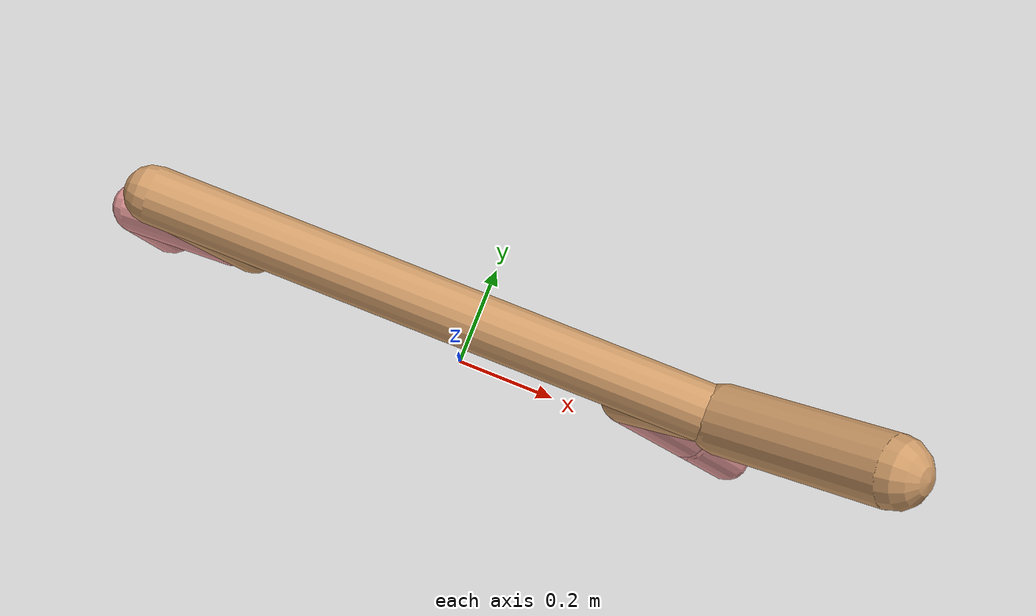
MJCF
<mujoco model="cheetah">
  <compiler angle="radian" coordinate="local" inertiafromgeom="true" settotalmass="14" />
  <default>
    <joint armature=".1" damping=".01" limited="true" solimplimit="0 .8 .03" solreflimit=".02 1" stiffness="8" />
    <geom conaffinity="0" condim="3" contype="1" friction="0.8 .1 .1" rgba="0.8 0.6 .4 1" solimp="0.0 0.8 0.01" solref="0.02 1" />
    <motor ctrllimited="true" ctrlrange="-1 1" />
  </default>
  <size nstack="300000" nuser_geom="1" />
  <option gravity="0 0 -9.81" timestep="0.01" />
  <worldbody>
    <body name="torso" pos="0.0 0.0 0.8222203358425826">
      <joint armature="0" axis="1 0 0" damping="0" limited="false" name="ignorex" pos="0 0 0" stiffness="0" type="slide" />
      <joint armature="0" axis="0 0 1" damping="0" limited="false" name="ignorez" pos="0 0 0" stiffness="0" type="slide" />
      <joint armature="0" axis="0 1 0" damping="0" limited="false" name="ignorey" pos="0 0 0" stiffness="0" type="hinge" />
      <geom fromto="-0.5 0.0 0.0 0.4630201679151904 0.0 0.0" name="torso" size="0.04709528323352818" type="capsule" />
      <geom axisangle="0 1 0 .87" name="head" pos="0.5630201679151904 0.0 0.1" size="0.05665266252592601 0.15" type="capsule" />

      <body name="bthigh" pos="-.5 0 0">
        <joint axis="0 1 0" damping="6" name="bthigh" pos="0 0 0" range="-.52 1.05" stiffness="240" type="hinge" />
        <geom axisangle="0 1 0 -3.8" name="bthigh" pos="0.07755751320315665 0.0 -0.10082476716410364" size="0.04348755493895534 0.10819158486629377" type="capsule" />
        <body name="bshin" pos="0.1151150264063133 0.0 -0.19164953432820728">
          <joint axis="0 1 0" damping="4.5" name="bshin" pos="0 0 0" range="-.785 .785" stiffness="180" type="hinge" />
          <geom axisangle="0 1 0 -2.03" name="bshin" pos="-0.1059422958415176 0.0 -0.0529711479207588" rgba="0.9 0.6 0.6 1" size="0.04348755493895534 0.11192232917202805" type="capsule" />
          <body name="bfoot" pos="-0.2118845916830352 0.0 -0.1059422958415176">
            <joint axis="0 1 0" damping="3" name="bfoot" pos="0 0 0" range="-.4 .785" stiffness="120" type="hinge" />
            <geom axisangle="0 1 0 -.27" name="bfoot" pos="0.022949499387923292 0.0 -0.07420338135428532" rgba="0.9 0.6 0.6 1" size="0.04348755493895534 0.07013799294780425" type="capsule" />
            <inertial mass="10" />
          </body>
        </body>
      </body>
      <body name="fthigh" pos="0.4630201679151904 0.0 0.0">
        <joint axis="0 1 0" damping="4.5" name="fthigh" pos="0 0 0" range="-1.5 0.8" stiffness="180" type="hinge" />
        <geom axisangle="0 1 0 .52" name="fthigh" pos="-0.07856754919748928 0.0 -0.1346872271956959" size="0.0421475028933034 0.15000345676471077" type="capsule" />
        <body name="fshin" pos="-0.15713509839497855 0.0 -0.2693744543913918">
          <joint axis="0 1 0" damping="3" name="fshin" pos="0 0 0" range="-1.2 1.1" stiffness="120" type="hinge" />
          <geom axisangle="0 1 0 -.6" name="fshin" pos="0.07293434971244019 0.0 -0.10098602267876333" rgba="0.9 0.6 0.6 1" size="0.0421475028933034 0.11955162719593489" type="capsule" />
          <body name="ffoot" pos="0.14586869942488037 0.0 -0.20197204535752666">
            <joint axis="0 1 0" damping="1.5" name="ffoot" pos="0 0 0" range="-3.1 -0.3" stiffness="60" type="hinge" />
            <geom axisangle="0 1 0 -.6" name="ffoot" pos="0.04983934122320432 0.0 -0.0775278641249845" rgba="0.9 0.6 0.6 1" size="0.0421475028933034 0.0789491877709004" type="capsule" />
            <inertial mass="10" />
          </body>
        </body>
      </body>
    </body>
  </worldbody>
  <actuator>
    <motor gear="120" joint="bthigh" name="bthigh" />
    <motor gear="90" joint="bshin" name="bshin" />
    <motor gear="60" joint="bfoot" name="bfoot" />
    <motor gear="120" joint="fthigh" name="fthigh" />
    <motor gear="60" joint="fshin" name="fshin" />
    <motor gear="30" joint="ffoot" name="ffoot" />
  </actuator>
</mujoco>
